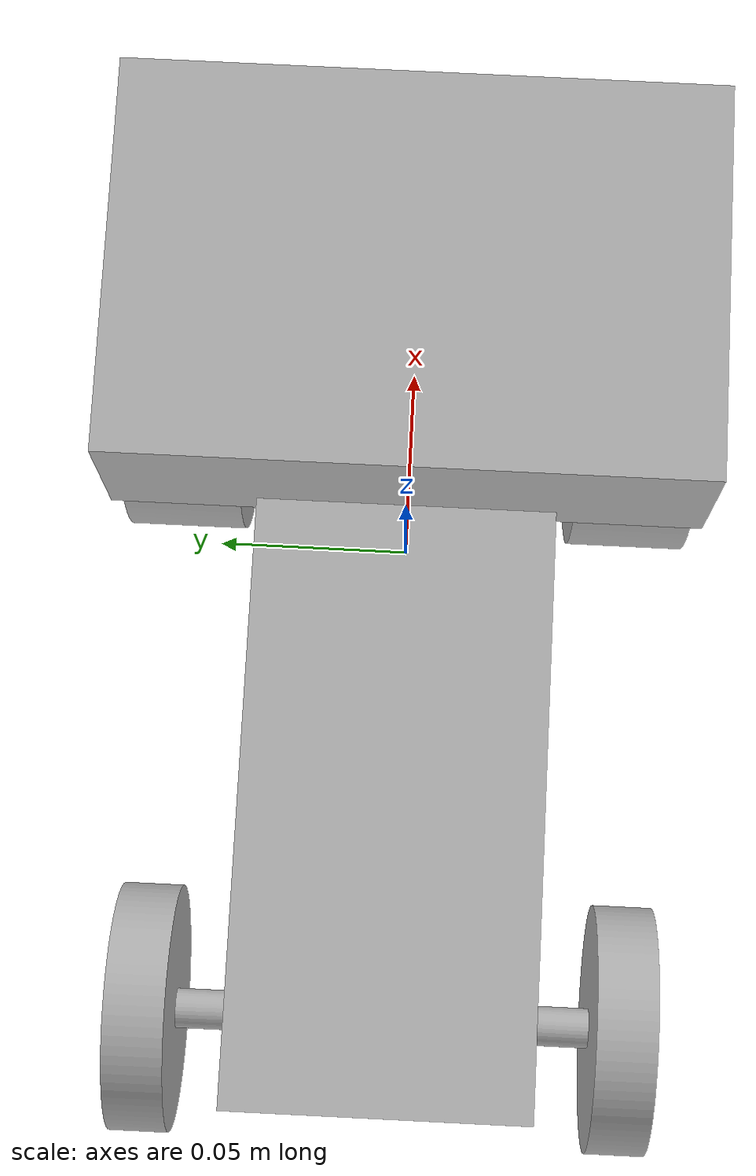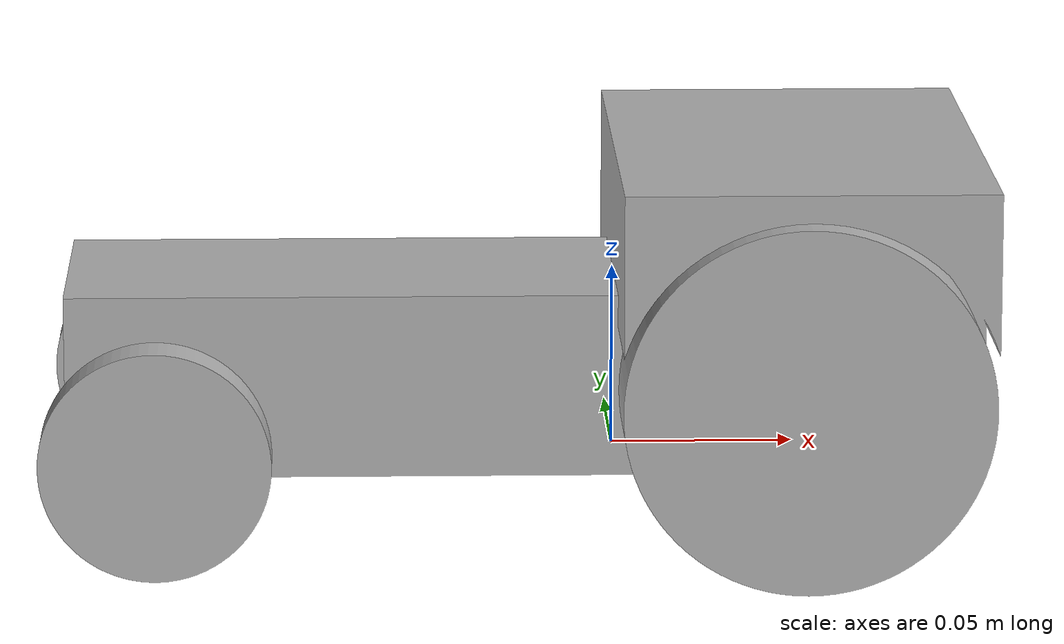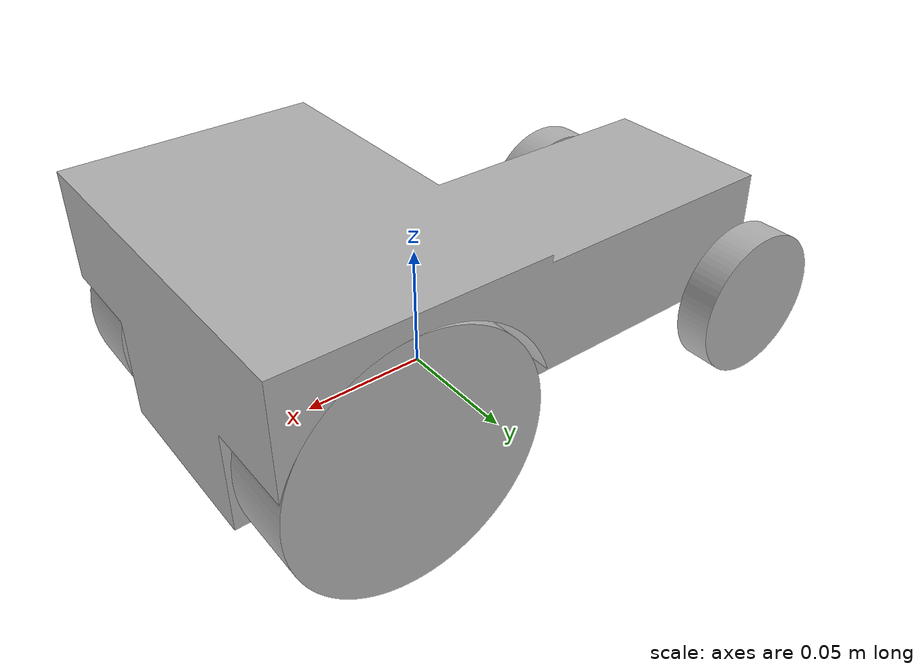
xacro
<?xml version="1.0" ?>
<robot name="tractor" xmlns:xacro="http://www.ros.org/wiki/xacro">

<xacro:include filename="$(find tractor_description)/urdf/materials.xacro" />
<xacro:include filename="$(find tractor_description)/urdf/tractor.trans" />
<xacro:include filename="$(find tractor_description)/urdf/tractor.gazebo" />
<link name="base_link">
  <inertial>
    <origin xyz="-0.0025883377290645466 -2.6567765223065907e-06 0.038309316274648626" rpy="0 0 0"/>
    <mass value="1.3964800557783217"/>
    <inertia ixx="0.001865" iyy="0.00794" izz="0.008156" ixy="0.0" iyz="-0.0" ixz="-0.000961"/>
  </inertial>
  <visual>
    <origin xyz="0 0 0" rpy="0 0 0"/>
    <geometry>
      <mesh filename="package://tractor_description/meshes/base_link.stl" scale="0.001 0.001 0.001"/>
    </geometry>
    <material name="silver"/>
  </visual>
  <collision>
    <origin xyz="0 0 0" rpy="0 0 0"/>
    <geometry>
      <mesh filename="package://tractor_description/meshes/base_link.stl" scale="0.001 0.001 0.001"/>
    </geometry>
  </collision>
</link>

<link name="rear_1">
  <inertial>
    <origin xyz="6.938893903907228e-18 -0.037499809085259156 -2.42861286636753e-17" rpy="0 0 0"/>
    <mass value="0.44446074765743293"/>
    <inertia ixx="0.00176" iyy="0.000548" izz="0.00176" ixy="-0.0" iyz="-0.0" ixz="0.0"/>
  </inertial>
  <visual>
    <origin xyz="-0.05 -0.037476 -0.025" rpy="0 0 0"/>
    <geometry>
      <mesh filename="package://tractor_description/meshes/rear_1.stl" scale="0.001 0.001 0.001"/>
    </geometry>
    <material name="silver"/>
  </visual>
  <collision>
    <origin xyz="-0.05 -0.037476 -0.025" rpy="0 0 0"/>
    <geometry>
      <mesh filename="package://tractor_description/meshes/rear_1.stl" scale="0.001 0.001 0.001"/>
    </geometry>
  </collision>
</link>

<link name="front_1">
  <inertial>
    <origin xyz="-2.7755575615628914e-17 -0.037499999999999985 1.734723475976807e-18" rpy="0 0 0"/>
    <mass value="0.09326554102959483"/>
    <inertia ixx="0.000338" iyy="4.2e-05" izz="0.000338" ixy="0.0" iyz="0.0" ixz="-0.0"/>
  </inertial>
  <visual>
    <origin xyz="0.125 -0.0375 -0.01" rpy="0 0 0"/>
    <geometry>
      <mesh filename="package://tractor_description/meshes/front_1.stl" scale="0.001 0.001 0.001"/>
    </geometry>
    <material name="silver"/>
  </visual>
  <collision>
    <origin xyz="0.125 -0.0375 -0.01" rpy="0 0 0"/>
    <geometry>
      <mesh filename="package://tractor_description/meshes/front_1.stl" scale="0.001 0.001 0.001"/>
    </geometry>
  </collision>
</link>

<joint name="Revolute 1" type="continuous">
  <origin xyz="0.05 0.037476 0.025" rpy="0 0 0"/>
  <parent link="base_link"/>
  <child link="rear_1"/>
  <axis xyz="0.0 -1.0 0.0"/>
</joint>

<joint name="Revolute 2" type="continuous">
  <origin xyz="-0.125 0.0375 0.01" rpy="0 0 0"/>
  <parent link="base_link"/>
  <child link="front_1"/>
  <axis xyz="0.0 -1.0 0.0"/>
</joint>

</robot>

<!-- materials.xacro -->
<robot name="tractor" xmlns:xacro="http://www.ros.org/wiki/xacro" >

<material name="silver">
  <color rgba="0.700 0.700 0.700 1.000"/>
</material>

</robot>

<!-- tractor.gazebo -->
<robot name="tractor" xmlns:xacro="http://www.ros.org/wiki/xacro" >

<xacro:property name="body_color" value="Gazebo/Silver" />

<gazebo>
  <plugin name="control" filename="libgazebo_ros_control.so"/>
</gazebo>
<gazebo reference="base_link">
  <material>${body_color}</material>
  <mu1>0.2</mu1>
  <mu2>0.2</mu2>
  <selfCollide>true</selfCollide>
  <gravity>true</gravity>
</gazebo>

<gazebo reference="rear_1">
  <material>${body_color}</material>
  <mu1>0.2</mu1>
  <mu2>0.2</mu2>
  <selfCollide>true</selfCollide>
</gazebo>

<gazebo reference="front_1">
  <material>${body_color}</material>
  <mu1>0.2</mu1>
  <mu2>0.2</mu2>
  <selfCollide>true</selfCollide>
</gazebo>

</robot>
